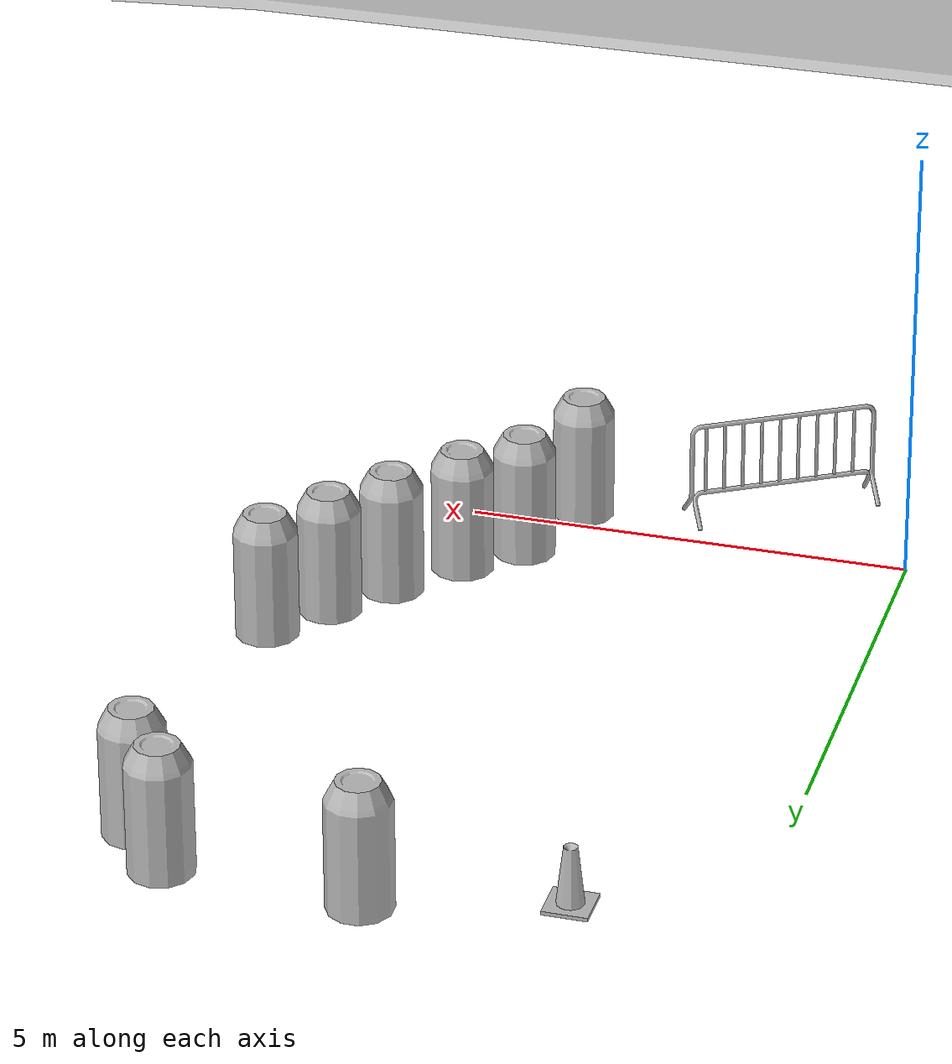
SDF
<sdf version="1.6">
 <world name="default">
  <model name="aws_robomaker_racetrack_CrashworthBucket_01_07">
   <link name="aws_CrashworthBucket_01::body">
    <inertial>
     <mass>5</mass>
     <inertia><ixx>1</ixx><ixy>0</ixy><ixz>0</ixz><iyy>1</iyy><iyz>0</iyz><izz>1</izz></inertia>
    </inertial>
    <visual name="visual">
     <geometry>
      <mesh>
       <uri>file://models/aws_robomaker_racetrack_CrashworthBucket_01/meshes/aws_CrashworthBucket_01_visual.DAE</uri>
      </mesh>
     </geometry>
     <material><shader type="pixel"><normal_map>__default__</normal_map></shader></material>
     <meta><layer>0</layer></meta>
    </visual>
    <collision name="collision_0">
     <geometry>
      <mesh>
       <uri>file://models/aws_robomaker_racetrack_CrashworthBucket_01/meshes/aws_CrashworthBucket_01_collision.DAE</uri>
       <scale>1 1 1</scale>
      </mesh>
     </geometry>
     <surface>
      <friction>
       <ode><mu>1</mu><mu2>1</mu2><fdir1>0 0 0</fdir1><slip1>0</slip1><slip2>0</slip2></ode>
       <torsional>
        <coefficient>1</coefficient>
        <patch_radius>0</patch_radius>
        <surface_radius>0</surface_radius>
        <use_patch_radius>1</use_patch_radius>
        <ode><slip>0</slip></ode>
       </torsional>
      </friction>
      <bounce><restitution_coefficient>0</restitution_coefficient><threshold>1e+06</threshold></bounce>
      <contact>
       <collide_without_contact>0</collide_without_contact>
       <collide_without_contact_bitmask>1</collide_without_contact_bitmask>
       <collide_bitmask>1</collide_bitmask>
       <ode>
        <soft_cfm>0</soft_cfm>
        <soft_erp>0.2</soft_erp>
        <kp>1e+13</kp>
        <kd>1</kd>
        <max_vel>0.01</max_vel>
        <min_depth>0</min_depth>
       </ode>
       <bullet>
        <split_impulse>1</split_impulse>
        <split_impulse_penetration_threshold>-0.01</split_impulse_penetration_threshold>
        <soft_cfm>0</soft_cfm>
        <soft_erp>0.2</soft_erp>
        <kp>1e+13</kp>
        <kd>1</kd>
       </bullet>
      </contact>
     </surface>
    </collision>
   </link>
   <static>1</static>
   <pose>5.89383 8.24239 0.054 0 -0 0</pose>
  </model>
  <model name="aws_robomaker_racetrack_CrashworthBucket_01_27">
   <link name="aws_CrashworthBucket_01::body">
    <inertial>
     <mass>5</mass>
     <inertia><ixx>1</ixx><ixy>0</ixy><ixz>0</ixz><iyy>1</iyy><iyz>0</iyz><izz>1</izz></inertia>
    </inertial>
    <visual name="visual">
     <geometry>
      <mesh>
       <uri>file://models/aws_robomaker_racetrack_CrashworthBucket_01/meshes/aws_CrashworthBucket_01_visual.DAE</uri>
      </mesh>
     </geometry>
     <material><shader type="pixel"><normal_map>__default__</normal_map></shader></material>
     <meta><layer>0</layer></meta>
    </visual>
    <collision name="collision_0">
     <geometry>
      <mesh>
       <uri>file://models/aws_robomaker_racetrack_CrashworthBucket_01/meshes/aws_CrashworthBucket_01_collision.DAE</uri>
       <scale>1 1 1</scale>
      </mesh>
     </geometry>
     <surface>
      <friction>
       <ode><mu>1</mu><mu2>1</mu2><fdir1>0 0 0</fdir1><slip1>0</slip1><slip2>0</slip2></ode>
       <torsional>
        <coefficient>1</coefficient>
        <patch_radius>0</patch_radius>
        <surface_radius>0</surface_radius>
        <use_patch_radius>1</use_patch_radius>
        <ode><slip>0</slip></ode>
       </torsional>
      </friction>
      <bounce><restitution_coefficient>0</restitution_coefficient><threshold>1e+06</threshold></bounce>
      <contact>
       <collide_without_contact>0</collide_without_contact>
       <collide_without_contact_bitmask>1</collide_without_contact_bitmask>
       <collide_bitmask>1</collide_bitmask>
       <ode>
        <soft_cfm>0</soft_cfm>
        <soft_erp>0.2</soft_erp>
        <kp>1e+13</kp>
        <kd>1</kd>
        <max_vel>0.01</max_vel>
        <min_depth>0</min_depth>
       </ode>
       <bullet>
        <split_impulse>1</split_impulse>
        <split_impulse_penetration_threshold>-0.01</split_impulse_penetration_threshold>
        <soft_cfm>0</soft_cfm>
        <soft_erp>0.2</soft_erp>
        <kp>1e+13</kp>
        <kd>1</kd>
       </bullet>
      </contact>
     </surface>
    </collision>
   </link>
   <static>1</static>
   <pose>3.82438 -0.358379 0 0 -0 0</pose>
  </model>
  <model name="aws_robomaker_racetrack_CrashworthBucket_01_38">
   <link name="aws_CrashworthBucket_01::body">
    <inertial>
     <mass>5</mass>
     <inertia><ixx>1</ixx><ixy>0</ixy><ixz>0</ixz><iyy>1</iyy><iyz>0</iyz><izz>1</izz></inertia>
    </inertial>
    <visual name="visual">
     <geometry>
      <mesh>
       <uri>file://models/aws_robomaker_racetrack_CrashworthBucket_01/meshes/aws_CrashworthBucket_01_visual.DAE</uri>
      </mesh>
     </geometry>
     <material><shader type="pixel"><normal_map>__default__</normal_map></shader></material>
     <meta><layer>0</layer></meta>
    </visual>
    <collision name="collision_0">
     <geometry>
      <mesh>
       <uri>file://models/aws_robomaker_racetrack_CrashworthBucket_01/meshes/aws_CrashworthBucket_01_collision.DAE</uri>
       <scale>1 1 1</scale>
      </mesh>
     </geometry>
     <surface>
      <friction>
       <ode><mu>1</mu><mu2>1</mu2><fdir1>0 0 0</fdir1><slip1>0</slip1><slip2>0</slip2></ode>
       <torsional>
        <coefficient>1</coefficient>
        <patch_radius>0</patch_radius>
        <surface_radius>0</surface_radius>
        <use_patch_radius>1</use_patch_radius>
        <ode><slip>0</slip></ode>
       </torsional>
      </friction>
      <bounce><restitution_coefficient>0</restitution_coefficient><threshold>1e+06</threshold></bounce>
      <contact>
       <collide_without_contact>0</collide_without_contact>
       <collide_without_contact_bitmask>1</collide_without_contact_bitmask>
       <collide_bitmask>1</collide_bitmask>
       <ode>
        <soft_cfm>0</soft_cfm>
        <soft_erp>0.2</soft_erp>
        <kp>1e+13</kp>
        <kd>1</kd>
        <max_vel>0.01</max_vel>
        <min_depth>0</min_depth>
       </ode>
       <bullet>
        <split_impulse>1</split_impulse>
        <split_impulse_penetration_threshold>-0.01</split_impulse_penetration_threshold>
        <soft_cfm>0</soft_cfm>
        <soft_erp>0.2</soft_erp>
        <kp>1e+13</kp>
        <kd>1</kd>
       </bullet>
      </contact>
     </surface>
    </collision>
   </link>
   <static>1</static>
   <pose>6.38383 7.63289 0.054 0 -0 0</pose>
  </model>
  <model name="aws_robomaker_racetrack_CrashworthBucket_01_45">
   <link name="aws_CrashworthBucket_01::body">
    <inertial>
     <mass>5</mass>
     <inertia><ixx>1</ixx><ixy>0</ixy><ixz>0</ixz><iyy>1</iyy><iyz>0</iyz><izz>1</izz></inertia>
    </inertial>
    <visual name="visual">
     <geometry>
      <mesh>
       <uri>file://models/aws_robomaker_racetrack_CrashworthBucket_01/meshes/aws_CrashworthBucket_01_visual.DAE</uri>
      </mesh>
     </geometry>
     <material><shader type="pixel"><normal_map>__default__</normal_map></shader></material>
     <meta><layer>0</layer></meta>
    </visual>
    <collision name="collision_0">
     <geometry>
      <mesh>
       <uri>file://models/aws_robomaker_racetrack_CrashworthBucket_01/meshes/aws_CrashworthBucket_01_collision.DAE</uri>
       <scale>1 1 1</scale>
      </mesh>
     </geometry>
     <surface>
      <friction>
       <ode><mu>1</mu><mu2>1</mu2><fdir1>0 0 0</fdir1><slip1>0</slip1><slip2>0</slip2></ode>
       <torsional>
        <coefficient>1</coefficient>
        <patch_radius>0</patch_radius>
        <surface_radius>0</surface_radius>
        <use_patch_radius>1</use_patch_radius>
        <ode><slip>0</slip></ode>
       </torsional>
      </friction>
      <bounce><restitution_coefficient>0</restitution_coefficient><threshold>1e+06</threshold></bounce>
      <contact>
       <collide_without_contact>0</collide_without_contact>
       <collide_without_contact_bitmask>1</collide_without_contact_bitmask>
       <collide_bitmask>1</collide_bitmask>
       <ode>
        <soft_cfm>0</soft_cfm>
        <soft_erp>0.2</soft_erp>
        <kp>1e+13</kp>
        <kd>1</kd>
        <max_vel>0.01</max_vel>
        <min_depth>0</min_depth>
       </ode>
       <bullet>
        <split_impulse>1</split_impulse>
        <split_impulse_penetration_threshold>-0.01</split_impulse_penetration_threshold>
        <soft_cfm>0</soft_cfm>
        <soft_erp>0.2</soft_erp>
        <kp>1e+13</kp>
        <kd>1</kd>
       </bullet>
      </contact>
     </surface>
    </collision>
   </link>
   <static>1</static>
   <pose>5.3642 2.03973 0.054 0 0 -0.008872</pose>
  </model>
  <model name="aws_robomaker_racetrack_CrashworthBucket_01_46">
   <link name="aws_CrashworthBucket_01::body">
    <inertial>
     <mass>5</mass>
     <inertia><ixx>1</ixx><ixy>0</ixy><ixz>0</ixz><iyy>1</iyy><iyz>0</iyz><izz>1</izz></inertia>
    </inertial>
    <visual name="visual">
     <geometry>
      <mesh>
       <uri>file://models/aws_robomaker_racetrack_CrashworthBucket_01/meshes/aws_CrashworthBucket_01_visual.DAE</uri>
      </mesh>
     </geometry>
     <material><shader type="pixel"><normal_map>__default__</normal_map></shader></material>
     <meta><layer>0</layer></meta>
    </visual>
    <collision name="collision_0">
     <geometry>
      <mesh>
       <uri>file://models/aws_robomaker_racetrack_CrashworthBucket_01/meshes/aws_CrashworthBucket_01_collision.DAE</uri>
       <scale>1 1 1</scale>
      </mesh>
     </geometry>
     <surface>
      <friction>
       <ode><mu>1</mu><mu2>1</mu2><fdir1>0 0 0</fdir1><slip1>0</slip1><slip2>0</slip2></ode>
       <torsional>
        <coefficient>1</coefficient>
        <patch_radius>0</patch_radius>
        <surface_radius>0</surface_radius>
        <use_patch_radius>1</use_patch_radius>
        <ode><slip>0</slip></ode>
       </torsional>
      </friction>
      <bounce><restitution_coefficient>0</restitution_coefficient><threshold>1e+06</threshold></bounce>
      <contact>
       <collide_without_contact>0</collide_without_contact>
       <collide_without_contact_bitmask>1</collide_without_contact_bitmask>
       <collide_bitmask>1</collide_bitmask>
       <ode>
        <soft_cfm>0</soft_cfm>
        <soft_erp>0.2</soft_erp>
        <kp>1e+13</kp>
        <kd>1</kd>
        <max_vel>0.01</max_vel>
        <min_depth>0</min_depth>
       </ode>
       <bullet>
        <split_impulse>1</split_impulse>
        <split_impulse_penetration_threshold>-0.01</split_impulse_penetration_threshold>
        <soft_cfm>0</soft_cfm>
        <soft_erp>0.2</soft_erp>
        <kp>1e+13</kp>
        <kd>1</kd>
       </bullet>
      </contact>
     </surface>
    </collision>
   </link>
   <static>1</static>
   <pose>5.91311 2.58362 0 0 0 -0.010849</pose>
  </model>
  <model name="aws_robomaker_racetrack_CrashworthBucket_01_47">
   <link name="aws_CrashworthBucket_01::body">
    <inertial>
     <mass>5</mass>
     <inertia><ixx>1</ixx><ixy>0</ixy><ixz>0</ixz><iyy>1</iyy><iyz>0</iyz><izz>1</izz></inertia>
    </inertial>
    <visual name="visual">
     <geometry>
      <mesh>
       <uri>file://models/aws_robomaker_racetrack_CrashworthBucket_01/meshes/aws_CrashworthBucket_01_visual.DAE</uri>
      </mesh>
     </geometry>
     <material><shader type="pixel"><normal_map>__default__</normal_map></shader></material>
     <meta><layer>0</layer></meta>
    </visual>
    <collision name="collision_0">
     <geometry>
      <mesh>
       <uri>file://models/aws_robomaker_racetrack_CrashworthBucket_01/meshes/aws_CrashworthBucket_01_collision.DAE</uri>
       <scale>1 1 1</scale>
      </mesh>
     </geometry>
     <surface>
      <friction>
       <ode><mu>1</mu><mu2>1</mu2><fdir1>0 0 0</fdir1><slip1>0</slip1><slip2>0</slip2></ode>
       <torsional>
        <coefficient>1</coefficient>
        <patch_radius>0</patch_radius>
        <surface_radius>0</surface_radius>
        <use_patch_radius>1</use_patch_radius>
        <ode><slip>0</slip></ode>
       </torsional>
      </friction>
      <bounce><restitution_coefficient>0</restitution_coefficient><threshold>1e+06</threshold></bounce>
      <contact>
       <collide_without_contact>0</collide_without_contact>
       <collide_without_contact_bitmask>1</collide_without_contact_bitmask>
       <collide_bitmask>1</collide_bitmask>
       <ode>
        <soft_cfm>0</soft_cfm>
        <soft_erp>0.2</soft_erp>
        <kp>1e+13</kp>
        <kd>1</kd>
        <max_vel>0.01</max_vel>
        <min_depth>0</min_depth>
       </ode>
       <bullet>
        <split_impulse>1</split_impulse>
        <split_impulse_penetration_threshold>-0.01</split_impulse_penetration_threshold>
        <soft_cfm>0</soft_cfm>
        <soft_erp>0.2</soft_erp>
        <kp>1e+13</kp>
        <kd>1</kd>
       </bullet>
      </contact>
     </surface>
    </collision>
   </link>
   <static>1</static>
   <pose>6.38729 3.3437 0.054 0 -0 0</pose>
  </model>
  <model name="aws_robomaker_racetrack_CrashworthBucket_01_48">
   <link name="aws_CrashworthBucket_01::body">
    <inertial>
     <mass>5</mass>
     <inertia><ixx>1</ixx><ixy>0</ixy><ixz>0</ixz><iyy>1</iyy><iyz>0</iyz><izz>1</izz></inertia>
    </inertial>
    <visual name="visual">
     <geometry>
      <mesh>
       <uri>file://models/aws_robomaker_racetrack_CrashworthBucket_01/meshes/aws_CrashworthBucket_01_visual.DAE</uri>
      </mesh>
     </geometry>
     <material><shader type="pixel"><normal_map>__default__</normal_map></shader></material>
     <meta><layer>0</layer></meta>
    </visual>
    <collision name="collision_0">
     <geometry>
      <mesh>
       <uri>file://models/aws_robomaker_racetrack_CrashworthBucket_01/meshes/aws_CrashworthBucket_01_collision.DAE</uri>
       <scale>1 1 1</scale>
      </mesh>
     </geometry>
     <surface>
      <friction>
       <ode><mu>1</mu><mu2>1</mu2><fdir1>0 0 0</fdir1><slip1>0</slip1><slip2>0</slip2></ode>
       <torsional>
        <coefficient>1</coefficient>
        <patch_radius>0</patch_radius>
        <surface_radius>0</surface_radius>
        <use_patch_radius>1</use_patch_radius>
        <ode><slip>0</slip></ode>
       </torsional>
      </friction>
      <bounce><restitution_coefficient>0</restitution_coefficient><threshold>1e+06</threshold></bounce>
      <contact>
       <collide_without_contact>0</collide_without_contact>
       <collide_without_contact_bitmask>1</collide_without_contact_bitmask>
       <collide_bitmask>1</collide_bitmask>
       <ode>
        <soft_cfm>0</soft_cfm>
        <soft_erp>0.2</soft_erp>
        <kp>1e+13</kp>
        <kd>1</kd>
        <max_vel>0.01</max_vel>
        <min_depth>0</min_depth>
       </ode>
       <bullet>
        <split_impulse>1</split_impulse>
        <split_impulse_penetration_threshold>-0.01</split_impulse_penetration_threshold>
        <soft_cfm>0</soft_cfm>
        <soft_erp>0.2</soft_erp>
        <kp>1e+13</kp>
        <kd>1</kd>
       </bullet>
      </contact>
     </surface>
    </collision>
   </link>
   <static>1</static>
   <pose>4.78436 1.25544 0 0 0 -0.004687</pose>
  </model>
  <model name="aws_robomaker_racetrack_CrashworthBucket_01_49">
   <link name="aws_CrashworthBucket_01::body">
    <inertial>
     <mass>5</mass>
     <inertia><ixx>1</ixx><ixy>0</ixy><ixz>0</ixz><iyy>1</iyy><iyz>0</iyz><izz>1</izz></inertia>
    </inertial>
    <visual name="visual">
     <geometry>
      <mesh>
       <uri>file://models/aws_robomaker_racetrack_CrashworthBucket_01/meshes/aws_CrashworthBucket_01_visual.DAE</uri>
      </mesh>
     </geometry>
     <material><shader type="pixel"><normal_map>__default__</normal_map></shader></material>
     <meta><layer>0</layer></meta>
    </visual>
    <collision name="collision_0">
     <geometry>
      <mesh>
       <uri>file://models/aws_robomaker_racetrack_CrashworthBucket_01/meshes/aws_CrashworthBucket_01_collision.DAE</uri>
       <scale>1 1 1</scale>
      </mesh>
     </geometry>
     <surface>
      <friction>
       <ode><mu>1</mu><mu2>1</mu2><fdir1>0 0 0</fdir1><slip1>0</slip1><slip2>0</slip2></ode>
       <torsional>
        <coefficient>1</coefficient>
        <patch_radius>0</patch_radius>
        <surface_radius>0</surface_radius>
        <use_patch_radius>1</use_patch_radius>
        <ode><slip>0</slip></ode>
       </torsional>
      </friction>
      <bounce><restitution_coefficient>0</restitution_coefficient><threshold>1e+06</threshold></bounce>
      <contact>
       <collide_without_contact>0</collide_without_contact>
       <collide_without_contact_bitmask>1</collide_without_contact_bitmask>
       <collide_bitmask>1</collide_bitmask>
       <ode>
        <soft_cfm>0</soft_cfm>
        <soft_erp>0.2</soft_erp>
        <kp>1e+13</kp>
        <kd>1</kd>
        <max_vel>0.01</max_vel>
        <min_depth>0</min_depth>
       </ode>
       <bullet>
        <split_impulse>1</split_impulse>
        <split_impulse_penetration_threshold>-0.01</split_impulse_penetration_threshold>
        <soft_cfm>0</soft_cfm>
        <soft_erp>0.2</soft_erp>
        <kp>1e+13</kp>
        <kd>1</kd>
       </bullet>
      </contact>
     </surface>
    </collision>
   </link>
   <static>1</static>
   <pose>4.1948 0.806848 0.054 0 0 -0.002707</pose>
  </model>
  <model name="aws_robomaker_racetrack_CrashworthBucket_01_53">
   <link name="aws_CrashworthBucket_01::body">
    <inertial>
     <mass>5</mass>
     <inertia><ixx>1</ixx><ixy>0</ixy><ixz>0</ixz><iyy>1</iyy><iyz>0</iyz><izz>1</izz></inertia>
    </inertial>
    <visual name="visual">
     <geometry>
      <mesh>
       <uri>file://models/aws_robomaker_racetrack_CrashworthBucket_01/meshes/aws_CrashworthBucket_01_visual.DAE</uri>
      </mesh>
     </geometry>
     <material><shader type="pixel"><normal_map>__default__</normal_map></shader></material>
     <meta><layer>0</layer></meta>
    </visual>
    <collision name="collision_0">
     <geometry>
      <mesh>
       <uri>file://models/aws_robomaker_racetrack_CrashworthBucket_01/meshes/aws_CrashworthBucket_01_collision.DAE</uri>
       <scale>1 1 1</scale>
      </mesh>
     </geometry>
     <surface>
      <friction>
       <ode><mu>1</mu><mu2>1</mu2><fdir1>0 0 0</fdir1><slip1>0</slip1><slip2>0</slip2></ode>
       <torsional>
        <coefficient>1</coefficient>
        <patch_radius>0</patch_radius>
        <surface_radius>0</surface_radius>
        <use_patch_radius>1</use_patch_radius>
        <ode><slip>0</slip></ode>
       </torsional>
      </friction>
      <bounce><restitution_coefficient>0</restitution_coefficient><threshold>1e+06</threshold></bounce>
      <contact>
       <collide_without_contact>0</collide_without_contact>
       <collide_without_contact_bitmask>1</collide_without_contact_bitmask>
       <collide_bitmask>1</collide_bitmask>
       <ode>
        <soft_cfm>0</soft_cfm>
        <soft_erp>0.2</soft_erp>
        <kp>1e+13</kp>
        <kd>1</kd>
        <max_vel>0.01</max_vel>
        <min_depth>0</min_depth>
       </ode>
       <bullet>
        <split_impulse>1</split_impulse>
        <split_impulse_penetration_threshold>-0.01</split_impulse_penetration_threshold>
        <soft_cfm>0</soft_cfm>
        <soft_erp>0.2</soft_erp>
        <kp>1e+13</kp>
        <kd>1</kd>
       </bullet>
      </contact>
     </surface>
    </collision>
   </link>
   <static>1</static>
   <pose>3.7947 8.27498 0 0 0 -0.244875</pose>
  </model>
  <model name="aws_robomaker_racetrack_Fence_02_12">
   <link name="aws_Fence_02::body">
    <inertial>
     <mass>5</mass>
     <inertia><ixx>9.6</ixx><ixy>0</ixy><ixz>0</ixz><iyy>8.2</iyy><iyz>0</iyz><izz>2.1</izz></inertia>
    </inertial>
    <visual name="visual">
     <geometry>
      <mesh><uri>file://models/aws_robomaker_racetrack_Fence_02/meshes/aws_Fence_02_visual.DAE</uri></mesh>
     </geometry>
     <material><shader type="pixel"><normal_map>__default__</normal_map></shader></material>
     <meta><layer>0</layer></meta>
    </visual>
    <collision name="collision_0">
     <geometry>
      <mesh>
       <uri>file://models/aws_robomaker_racetrack_Fence_02/meshes/aws_Fence_02_collision.DAE</uri>
       <scale>1 1 1</scale>
      </mesh>
     </geometry>
     <surface>
      <friction>
       <ode><mu>1</mu><mu2>1</mu2><fdir1>0 0 0</fdir1><slip1>0</slip1><slip2>0</slip2></ode>
       <torsional>
        <coefficient>1</coefficient>
        <patch_radius>0</patch_radius>
        <surface_radius>0</surface_radius>
        <use_patch_radius>1</use_patch_radius>
        <ode><slip>0</slip></ode>
       </torsional>
      </friction>
      <bounce><restitution_coefficient>0</restitution_coefficient><threshold>1e+06</threshold></bounce>
      <contact>
       <collide_without_contact>0</collide_without_contact>
       <collide_without_contact_bitmask>1</collide_without_contact_bitmask>
       <collide_bitmask>1</collide_bitmask>
      </contact>
     </surface>
    </collision>
   </link>
   <static>1</static>
   <pose>1.65856 -1.03383 0 0 0 -1.02955</pose>
  </model>
  <model name="aws_robomaker_racetrack_Track_05_00">
   <link name="aws_Track_05::body">
    <inertial>
     <mass>1000</mass>
     <inertia><ixx>1</ixx><ixy>0</ixy><ixz>0</ixz><iyy>1</iyy><iyz>0</iyz><izz>1</izz></inertia>
    </inertial>
    <visual name="visual">
     <geometry>
      <mesh><uri>file://models/aws_robomaker_racetrack_Track_05/meshes/aws_Track_05_visual.DAE</uri></mesh>
     </geometry>
     <material><shader type="pixel"><normal_map>__default__</normal_map></shader></material>
     <meta><layer>0</layer></meta>
    </visual>
    <collision name="collision_0">
     <geometry>
      <mesh>
       <uri>file://models/aws_robomaker_racetrack_Track_05/meshes/aws_Track_05_collision.DAE</uri>
       <scale>1 1 1</scale>
      </mesh>
     </geometry>
     <surface>
      <friction>
       <ode><mu>1</mu><mu2>1</mu2><fdir1>0 0 0</fdir1><slip1>0</slip1><slip2>0</slip2></ode>
       <torsional>
        <coefficient>1</coefficient>
        <patch_radius>0</patch_radius>
        <surface_radius>0</surface_radius>
        <use_patch_radius>1</use_patch_radius>
        <ode><slip>0</slip></ode>
       </torsional>
      </friction>
      <bounce><restitution_coefficient>0</restitution_coefficient><threshold>1e+06</threshold></bounce>
      <contact>
       <collide_without_contact>0</collide_without_contact>
       <collide_without_contact_bitmask>1</collide_without_contact_bitmask>
       <collide_bitmask>1</collide_bitmask>
       <ode>
        <soft_cfm>0</soft_cfm>
        <soft_erp>0.2</soft_erp>
        <kp>1e+13</kp>
        <kd>1</kd>
        <max_vel>0.01</max_vel>
        <min_depth>0</min_depth>
       </ode>
       <bullet>
        <split_impulse>1</split_impulse>
        <split_impulse_penetration_threshold>-0.01</split_impulse_penetration_threshold>
        <soft_cfm>0</soft_cfm>
        <soft_erp>0.2</soft_erp>
        <kp>1e+13</kp>
        <kd>1</kd>
       </bullet>
      </contact>
     </surface>
    </collision>
   </link>
   <static>1</static>
   <pose>0 0 0.051 0 -0 0</pose>
  </model>
  <model name="aws_robomaker_racetrack_TrafficCone_01_13">
   <link name="aws_TrafficCone_01::body">
    <inertial>
     <mass>0.5</mass>
     <inertia><ixx>1</ixx><ixy>0</ixy><ixz>0</ixz><iyy>1</iyy><iyz>0</iyz><izz>1</izz></inertia>
    </inertial>
    <visual name="visual">
     <geometry>
      <mesh>
       <uri>file://models/aws_robomaker_racetrack_TrafficCone_01/meshes/aws_TrafficCone_01_visual.DAE</uri>
      </mesh>
     </geometry>
     <material><shader type="pixel"><normal_map>__default__</normal_map></shader></material>
     <meta><layer>0</layer></meta>
    </visual>
    <collision name="collision_0">
     <geometry>
      <mesh>
       <uri>file://models/aws_robomaker_racetrack_TrafficCone_01/meshes/aws_TrafficCone_01_coliision.DAE</uri>
       <scale>1 1 1</scale>
      </mesh>
     </geometry>
     <surface>
      <friction>
       <ode><mu>1</mu><mu2>1</mu2><fdir1>0 0 0</fdir1><slip1>0</slip1><slip2>0</slip2></ode>
       <torsional>
        <coefficient>1</coefficient>
        <patch_radius>0</patch_radius>
        <surface_radius>0</surface_radius>
        <use_patch_radius>1</use_patch_radius>
        <ode><slip>0</slip></ode>
       </torsional>
      </friction>
      <bounce><restitution_coefficient>0</restitution_coefficient><threshold>1e+06</threshold></bounce>
      <contact>
       <collide_without_contact>0</collide_without_contact>
       <collide_without_contact_bitmask>1</collide_without_contact_bitmask>
       <collide_bitmask>1</collide_bitmask>
       <ode>
        <soft_cfm>0</soft_cfm>
        <soft_erp>0.2</soft_erp>
        <kp>1e+13</kp>
        <kd>1</kd>
        <max_vel>0.01</max_vel>
        <min_depth>0</min_depth>
       </ode>
       <bullet>
        <split_impulse>1</split_impulse>
        <split_impulse_penetration_threshold>-0.01</split_impulse_penetration_threshold>
        <soft_cfm>0</soft_cfm>
        <soft_erp>0.2</soft_erp>
        <kp>1e+13</kp>
        <kd>1</kd>
       </bullet>
      </contact>
     </surface>
    </collision>
   </link>
   <static>1</static>
   <pose>1.78217 7.69024 0 0 -0 0</pose>
  </model>
  <model name="ground_plane">
   <pose>0 0 -1.29145e+07 0 -0 0</pose>
   <link name="link">
    <pose>0 0 -1 0 -0 0</pose>
    <inertial>
     <inertia><ixx>1</ixx><ixy>0</ixy><ixz>0</ixz><iyy>1</iyy><iyz>0</iyz><izz>1</izz></inertia>
     <mass>1</mass>
    </inertial>
   </link>
  </model>
 </world>
</sdf>
